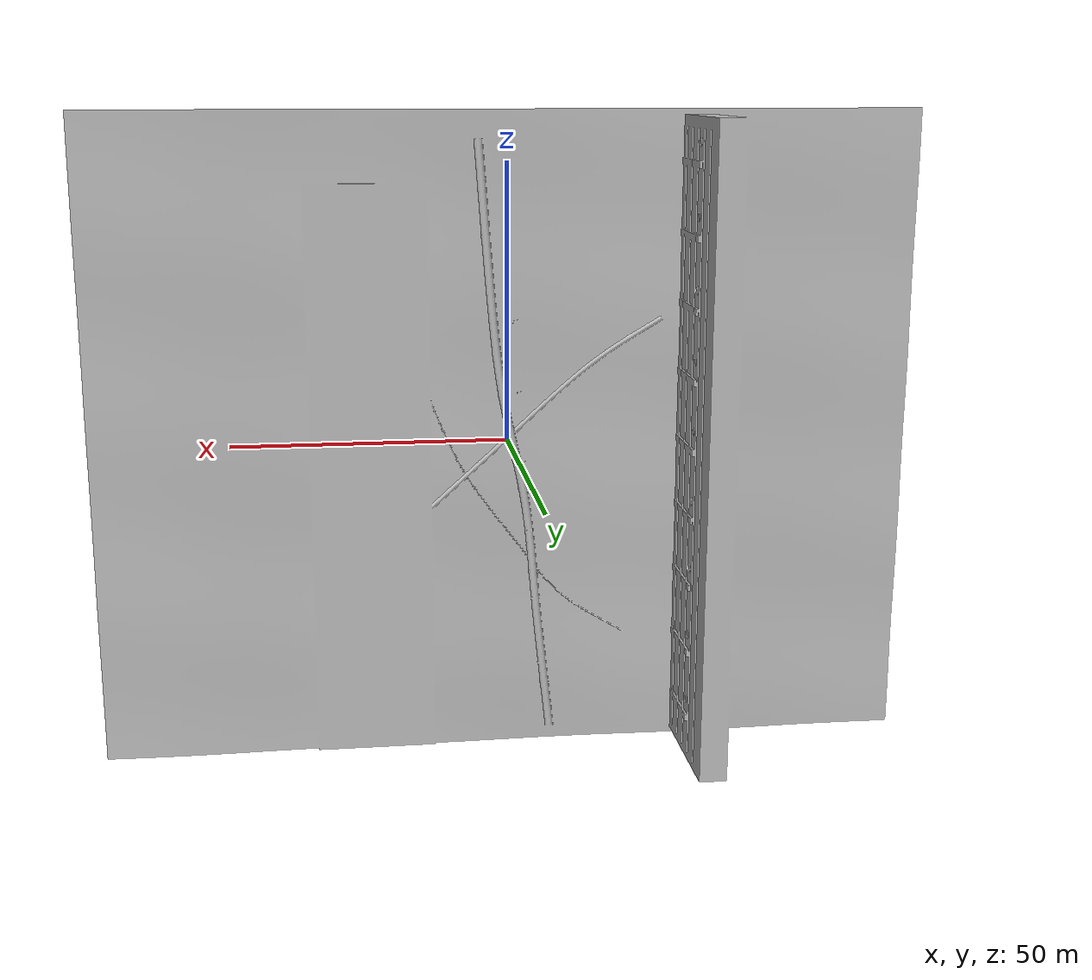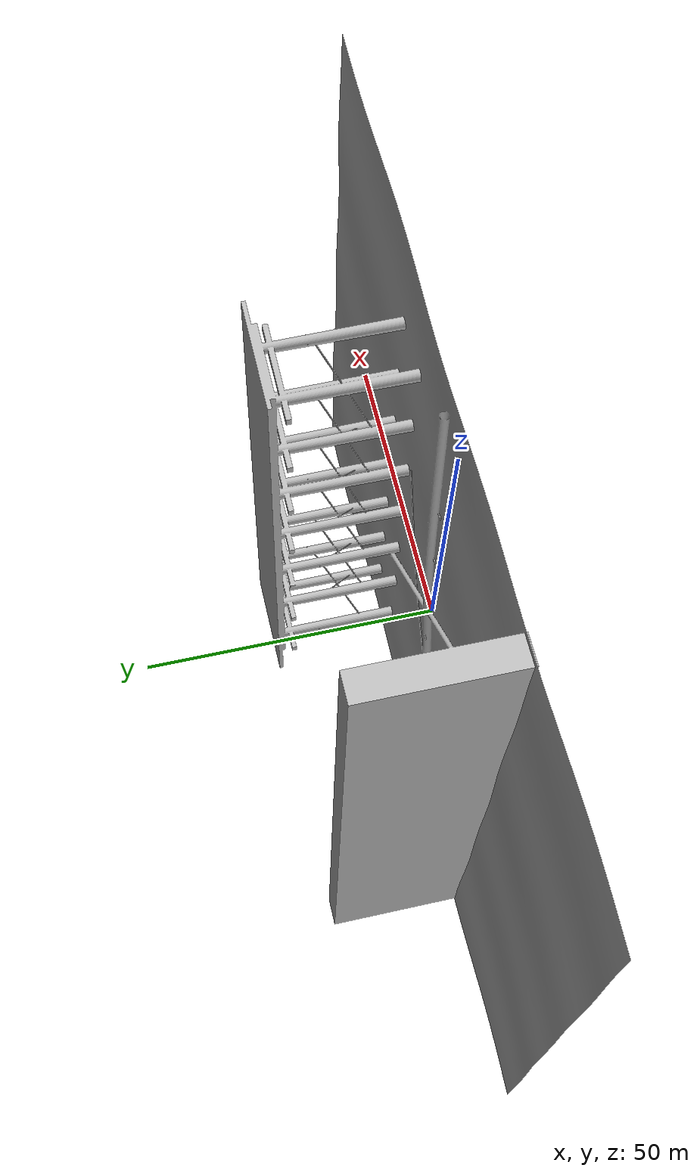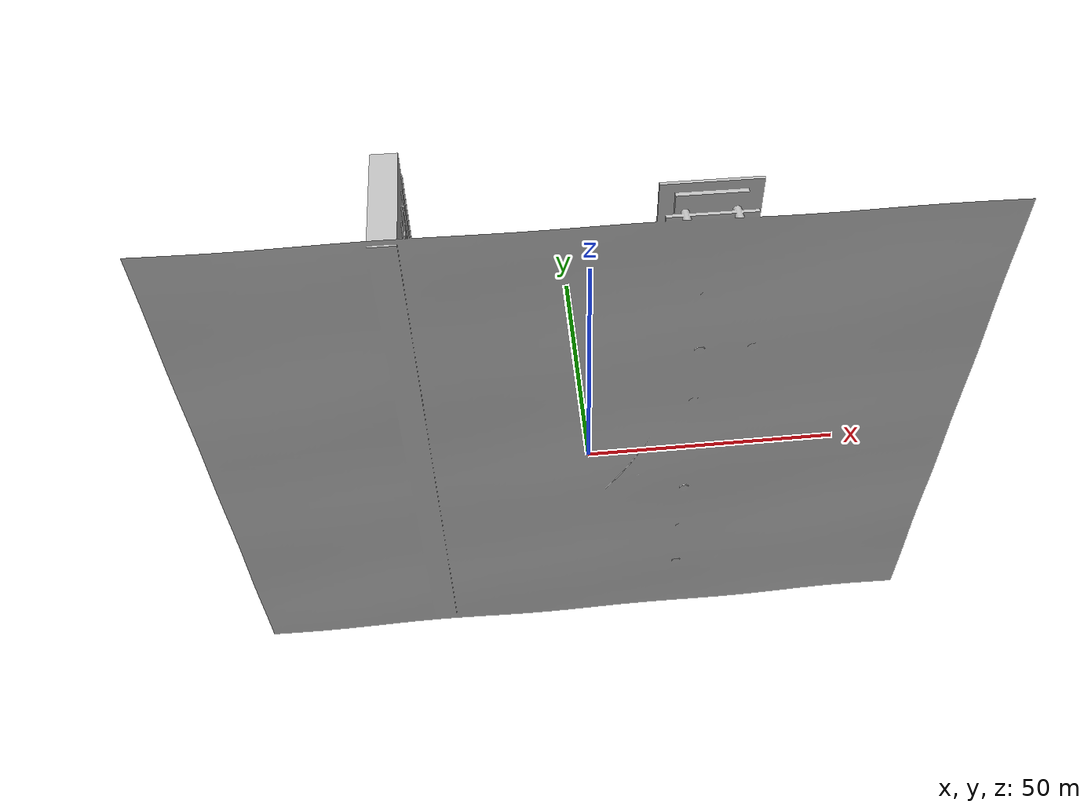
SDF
<?xml version="1.0" ?>
<sdf version="1.6">
  <world name="harbor_pipeline_inspection">
    <include>
      <name>harbor_pipeline_inspection</name>
      <uri>model://harbor_pipeline_inspection</uri>
      <pose>0 0 0 0 0 0</pose>
    </include>
  </world>
</sdf>

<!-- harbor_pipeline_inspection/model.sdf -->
<sdf version="1.5">
  <model name="harbor_pipeline_inspection">
    <static>true</static>
    <link name="environment_link">
      <visual name="harbor_pipeline_environment_visual">
        <geometry>
          <mesh>
            <uri>model://harbor_pipeline_inspection/meshes/harbor_pipeline_inspection.obj</uri>
          </mesh>
        </geometry>
      </visual>
      <collision name="harbor_pipeline_environment_collision">
        <geometry>
          <mesh>
            <uri>model://harbor_pipeline_inspection/meshes/harbor_pipeline_inspection.obj</uri>
          </mesh>
        </geometry>
      </collision>
    </link>
  </model>
</sdf>
